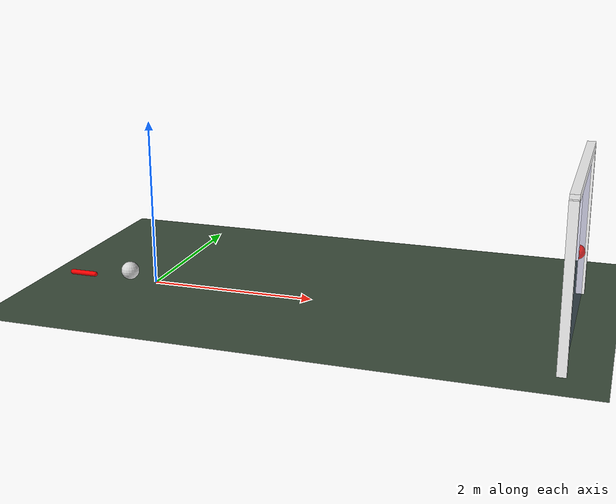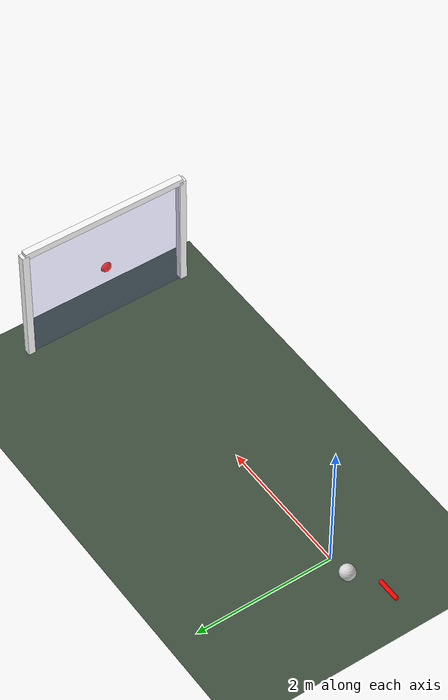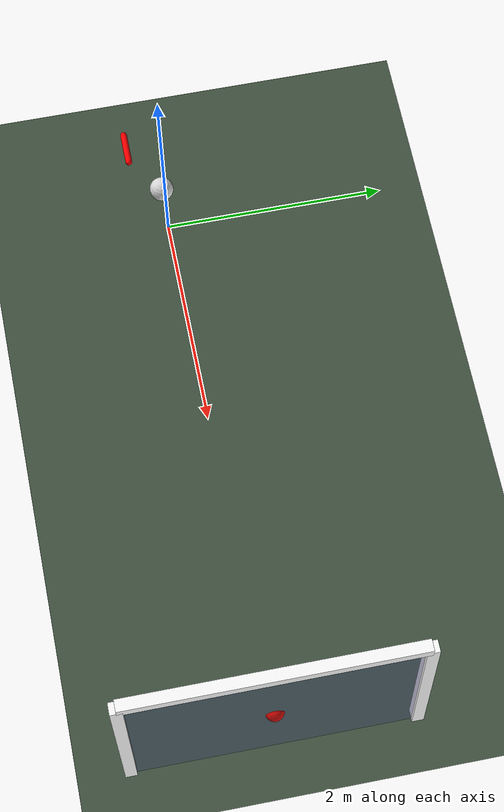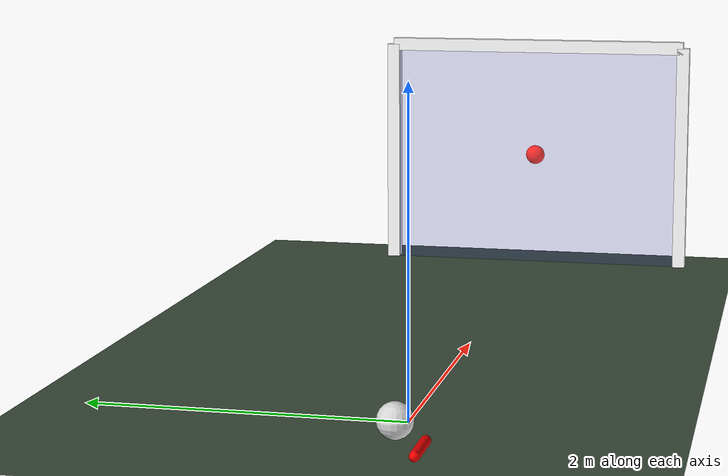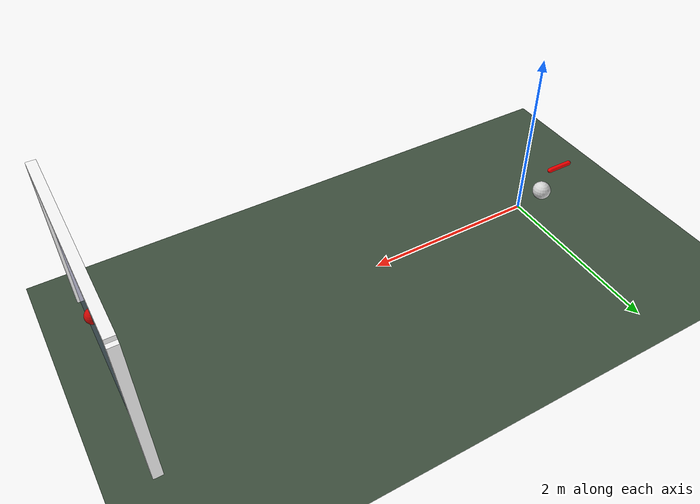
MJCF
<mujoco model="soccer_kick_demo">
  <compiler inertiafromgeom="true" angle="degree"/>
  <option timestep="0.002" gravity="0 0 -9.81"/>

  <worldbody>
    <!-- Ground -->
    <geom name="ground" type="plane" size="12 12 0.1" rgba="0.25 0.32 0.25 1"
        friction="1.5 0.01 0.01" condim="3" solimp="0.95 0.99 0.001" solref="0.002 1"/>

    <!-- Goal frame at x=5 (white posts are collidable) -->
    <body name="goal" pos="5 0 0.9">
      <!-- posts (white) -->
      <geom name="left_post"  type="box" size="0.05 0.05 0.9" pos="0  1.2 0"
            rgba="1 1 1 1"/>
      <geom name="right_post" type="box" size="0.05 0.05 0.9" pos="0 -1.2 0"
            rgba="1 1 1 1"/>
      <geom name="crossbar"   type="box" size="0.05 1.2 0.05" pos="0 0 0.9"
            rgba="1 1 1 1"/>
      <!-- visual "net" plane (non-collidable) -->
      <geom name="net" type="box" size="0.02 1.2 0.9" pos="0 0 0"
            rgba="0.1 0.1 0.6 0.15" contype="0" conaffinity="0"/>
      <!-- target marker for RL (center of goal) -->
      <site name="target" pos="0 0 0" size="0.08" rgba="1 0 0 0.8"/>
    </body>

    <!-- Ball centered at y=0 -->
    <body name="ball" pos="-0.35 0 0.11">
        <joint name="ball_free" type="free" damping="0.002"/>
        <geom type="sphere" size="0.11" mass="0.20"
                rgba="0.85 0.85 0.85 1" friction="1.0 0.02 0.002" condim="3"/>
    </body>

    <!-- Kicker arm: swings horizontally toward +X -->
    <body name="kicker" pos="-1.0 -0.25 0.11">
        <!-- hinge around the Y-axis to swing forward in +X -->
        <joint name="hinge" type="hinge" axis="0 1 0" range="-35 35"/>
        <geom name="foot" type="capsule" fromto="0 0 0 0.3 0 0" size="0.03" rgba="1 0 0 1"/>
        <site name="kick_site" pos="0.3 0 0" size="0.02" rgba="1 0 0 1"/>
    </body>

  </worldbody>

  <actuator>
    <!-- torque motor on the hinge to "kick" -->
    <motor name="kick_motor" joint="hinge" ctrlrange="-1 1" gear="300"/>
  </actuator>
</mujoco>
